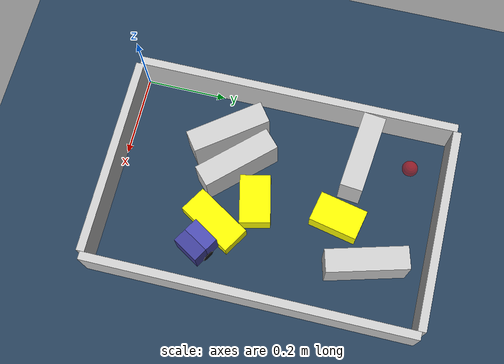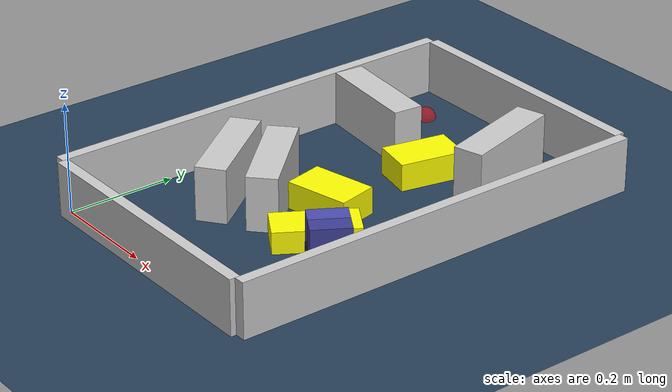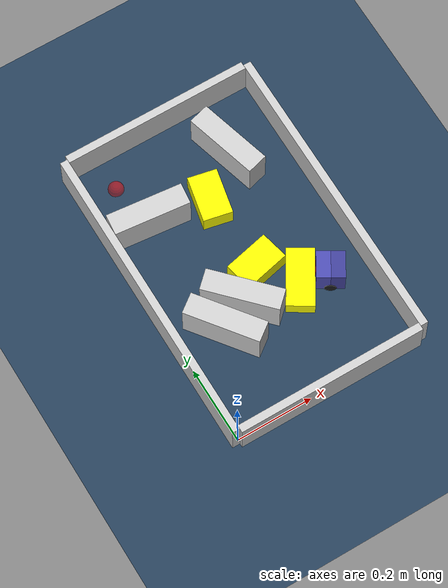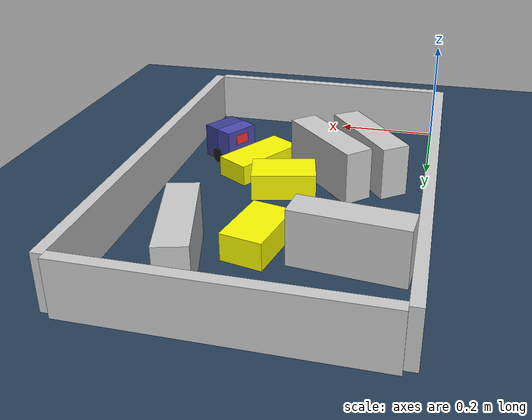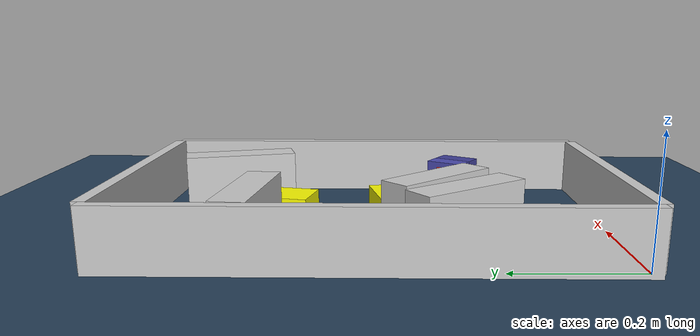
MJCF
<?xml version='1.0' encoding='utf-8'?>
<mujoco model="real_buildable">
  <compiler angle="degree" />
  <option timestep="0.002" integrator="implicitfast" iterations="100" cone="elliptic" />
  <default>
    <geom density="1" />
  </default>
  <asset>
    <texture builtin="gradient" height="3072" rgb1="0.3 0.5 0.7" rgb2="0 0 0" type="skybox" width="512" />
    <texture builtin="checker" height="300" mark="edge" markrgb="0.8 0.8 0.8" name="groundplane" rgb1="0.2 0.3 0.4" rgb2="0.1 0.2 0.3" type="2d" width="300" />
    <material name="groundplane" reflectance="0.2" texrepeat="5 5" texture="groundplane" texuniform="true" />
  </asset>
  <worldbody>
    <light dir="0 0 -1" directional="true" pos="0 0 1.5" />
    <geom name="floor" type="plane" condim="4" friction="0.5 0.005 0.001" material="groundplane" size="0 0 0.05" />
    <body name="walls">
      <geom name="wall_boundary_left" type="box" condim="4" friction="1.0 0.005 0.0001" rgba="0.8 0.8 0.8 1" pos="-0.010000 0.387500 0.050000" euler="0 0 0.000000" size="0.010000 0.397500 0.050000" />
      <geom name="wall_boundary_right" type="box" condim="4" friction="1.0 0.005 0.0001" rgba="0.8 0.8 0.8 1" pos="0.500000 0.387500 0.050000" euler="0 0 0.000000" size="0.010000 0.397500 0.050000" />
      <geom name="wall_boundary_bottom" type="box" condim="4" friction="1.0 0.005 0.0001" rgba="0.8 0.8 0.8 1" pos="0.245000 -0.010000 0.050000" euler="0 0 0.000000" size="0.245000 0.010000 0.050000" />
      <geom name="wall_boundary_top" type="box" condim="4" friction="1.0 0.005 0.0001" rgba="0.8 0.8 0.8 1" pos="0.245000 0.785000 0.050000" euler="0 0 0.000000" size="0.245000 0.010000 0.050000" />
      <geom name="wall_inner_1" type="box" condim="4" friction="1.0 0.005 0.0001" rgba="0.8 0.8 0.8 1" pos="0.184717 0.282959 0.050000" euler="0 0 -46.629142" size="0.097500 0.027500 0.050000" />
      <geom name="wall_inner_2" type="box" condim="4" friction="1.0 0.005 0.0001" rgba="0.8 0.8 0.8 1" pos="0.113388 0.243286 0.050000" euler="0 0 -53.073195" size="0.097500 0.027500 0.050000" />
      <geom name="wall_inner_3" type="box" condim="4" friction="1.0 0.005 0.0001" rgba="0.8 0.8 0.8 1" pos="0.100000 0.574000 0.050000" euler="0 0 174.100000" size="0.097500 0.027500 0.050000" />
      <geom name="wall_inner_4" type="box" condim="4" friction="1.0 0.005 0.0001" rgba="0.8 0.8 0.8 1" pos="0.356000 0.635000 0.050000" euler="0 0 105.500000" size="0.097500 0.027500 0.050000" />
    </body>
    <body name="car" pos="0.39902793114113794 0.23737552817591218 0.01" quat="0.26866086461900524 0 0 0.96323483108854024">
      <freejoint name="car_freejoint" />
      <inertial pos="0 0 0.0375" mass="0.35" diaginertia="0.000266 0.000266 0.000286" />
      <geom name="front_chassis_collision" type="box" pos="0.0175 0 0.0375" size="0.0175 0.035 0.0325" rgba="0.3 0.3 0.7 1" />
      <geom name="rear_chassis_collision" type="box" pos="-0.0175 0 0.0375" size="0.0175 0.035 0.0325" rgba="0.25 0.25 0.6 1" />
      <geom name="front_marker" type="box" pos="0.034 0 0.0505" size="0.002 0.015 0.01" rgba="1 0.2 0.2 1" contype="0" conaffinity="0" />
      <body name="rear_support_body" pos="-0.03 0 0.0025">
        <joint name="rear_caster_joint" type="ball" damping="0.0001" />
        <inertial pos="0 0 0" mass="0.025" diaginertia="0.000001 0.000001 0.000001" />
        <geom name="rear_support" type="sphere" pos="0 0 0" size="0.0025" friction="0 0 0" rgba="0.7 0.1 0.1 1" />
      </body>
      <body name="front_support_body" pos="0.03 0 0.0025">
        <joint name="front_caster_joint" type="ball" damping="0.0001" />
        <inertial pos="0 0 0" mass="0.025" diaginertia="0.000001 0.000001 0.000001" />
        <geom name="front_support" type="sphere" pos="0 0 0" size="0.0025" friction="0 0 0" rgba="0.1 0.7 0.1 1" />
      </body>
      <body name="left_wheel" pos="0 0.0375 0.015">
        <inertial pos="0 0 0" mass="0.05" diaginertia="0.000003 0.000006 0.000003" />
        <joint name="left_wheel_joint" type="hinge" axis="0 1 0" damping="0.01" armature="0.0001" />
        <geom name="left_wheel_collision" type="cylinder" size="0.015 0.0005" euler="90 0 0" rgba="0.1 0.1 0.1 1" />
      </body>
      <body name="right_wheel" pos="0 -0.0375 0.015">
        <inertial pos="0 0 0" mass="0.05" diaginertia="0.000003 0.000006 0.000003" />
        <joint name="right_wheel_joint" type="hinge" axis="0 1 0" damping="0.01" armature="0.0001" />
        <geom name="right_wheel_collision" type="cylinder" size="0.015 0.0005" euler="90 0 0" rgba="0.1 0.1 0.1 1" />
      </body>
    </body>
    <body name="obstacle_0_movable">
      <geom name="obstacle_0_movable" condim="4" pos="0.33103202119484071 0.26124769208662235 0.02" friction="1 0.005 0.0001" rgba="1 1 0 1" size="0.035000 0.075000 0.020000" type="box" mass="0.1" quat="0.27026069926063295 0 0 0.9627871802403446" />
      <joint type="free" />
    </body>
    <body name="obstacle_1_movable">
      <geom name="obstacle_1_movable" condim="4" pos="0.25499999999999928 0.55000000000000016 0.025000000000000001" friction="1 0.005 0.0001" rgba="1 1 0 1" size="0.037500 0.060000 0.025000" type="box" mass="0.1" quat="0.99470281711717423 0 0 -0.10279253678724681" />
      <joint type="free" />
    </body>
    <body name="obstacle_2_movable">
      <geom name="obstacle_2_movable" condim="4" pos="0.26053177546981576 0.34568957079865087 0.025000000000000001" friction="1 0.005 0.0001" rgba="1 1 0 1" size="0.037500 0.060000 0.025000" type="box" mass="0.1" quat="0.62394131468574066 0 0 0.78147119961533429" />
      <joint type="free" />
    </body>
    <site name="goal" type="sphere" pos="0.080000 0.700000 0.0" size="0.02" rgba="1 0 0 0.5" />
  </worldbody>
  <actuator>
    <velocity name="left_wheel_drive" joint="left_wheel_joint" ctrlrange="-25 25" kv="0.75" forcerange="-0.5 0.5" />
    <velocity name="right_wheel_drive" joint="right_wheel_joint" ctrlrange="-25 25" kv="0.75" forcerange="-0.5 0.5" />
  </actuator>
</mujoco>
